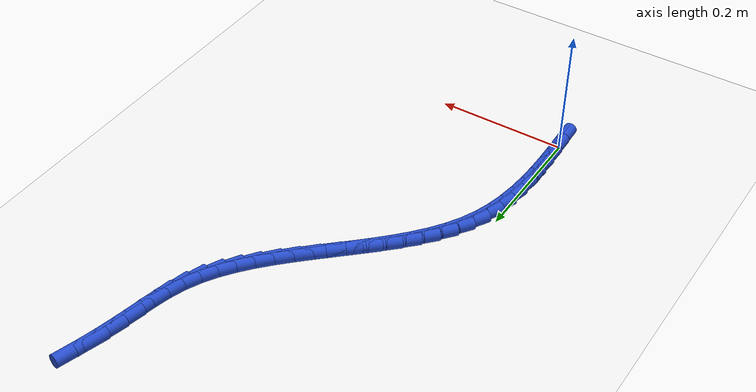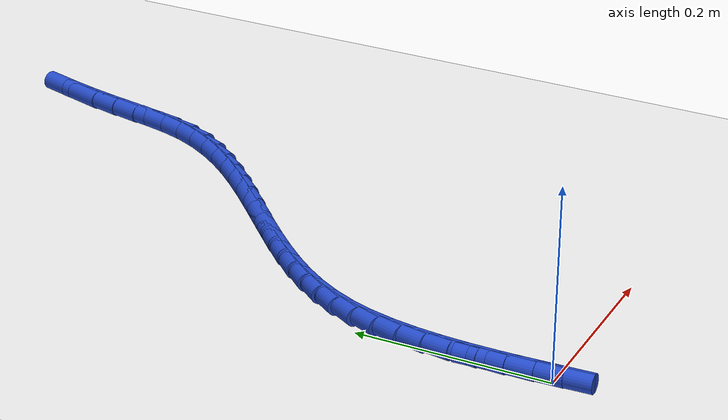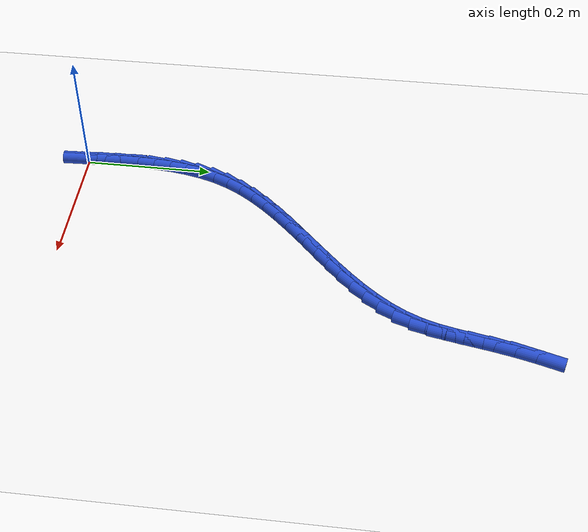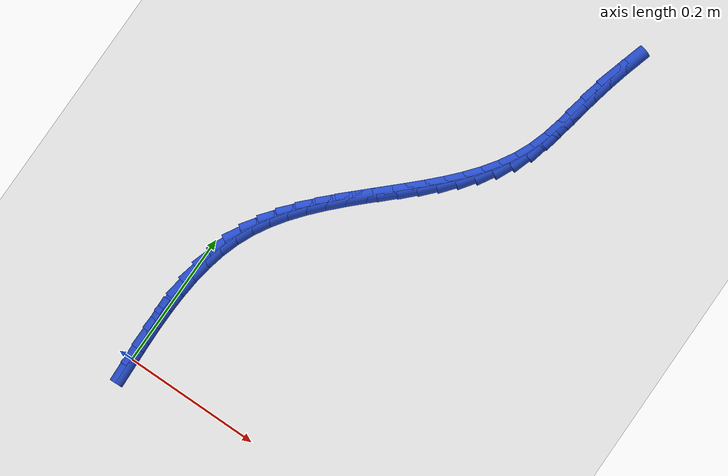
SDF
<sdf version="1.6">
 <world name="default">
  <model name="ground_plane">
   <static>1</static>
   <link name="link">
    <collision name="collision">
     <geometry><plane><normal>0 0 1</normal><size>100 100</size></plane></geometry>
     <surface><friction><ode><mu>100</mu><mu2>50</mu2></ode></friction></surface>
    </collision>
    <visual name="visual">
     <cast_shadows>0</cast_shadows>
     <geometry><plane><normal>0 0 1</normal><size>100 100</size></plane></geometry>
     <material>
      <script><uri>file://media/materials/scripts/gazebo.material</uri><name>Gazebo/WhiteGlow</name></script>
     </material>
    </visual>
   </link>
  </model>
  <model name="line">
   <link name="link_0">
    <pose>1.734723475976807e-18 -2.0816681711721685e-17 0.01 0 1.57 -1.532886110411397</pose>
    <collision name="collision">
     <geometry><cylinder><radius>0.01</radius><length>0.08</length></cylinder></geometry>
    </collision>
    <visual name="visual">
     <material>
      <script><name>Gazebo/Blue</name><uri>file://media/materials/scripts/gazebo.material</uri></script>
     </material>
     <geometry><cylinder><radius>0.01</radius><length>0.08</length></cylinder></geometry>
    </visual>
   </link>
   <link name="link_1">
    <pose>-0.001054489585071092 0.02780211963542385 0.01 0 1.57 -1.550534901083931</pose>
    <collision name="collision">
     <geometry><cylinder><radius>0.01</radius><length>0.08</length></cylinder></geometry>
    </collision>
    <visual name="visual">
     <material>
      <script><name>Gazebo/Blue</name><uri>file://media/materials/scripts/gazebo.material</uri></script>
     </material>
     <geometry><cylinder><radius>0.01</radius><length>0.08</length></cylinder></geometry>
    </visual>
   </link>
   <link name="link_2">
    <pose>-0.0016200203628982863 0.05570999717233436 0.01 0 1.57 1.5635487329833877</pose>
    <collision name="collision">
     <geometry><cylinder><radius>0.01</radius><length>0.08</length></cylinder></geometry>
    </collision>
    <visual name="visual">
     <material>
      <script><name>Gazebo/Blue</name><uri>file://media/materials/scripts/gazebo.material</uri></script>
     </material>
     <geometry><cylinder><radius>0.01</radius><length>0.08</length></cylinder></geometry>
    </visual>
   </link>
   <link name="link_3">
    <pose>-0.0014181952436658097 0.08355669921876518 0.01 0 1.57 1.525655338502662</pose>
    <collision name="collision">
     <geometry><cylinder><radius>0.01</radius><length>0.08</length></cylinder></geometry>
    </collision>
    <visual name="visual">
     <material>
      <script><name>Gazebo/Blue</name><uri>file://media/materials/scripts/gazebo.material</uri></script>
     </material>
     <geometry><cylinder><radius>0.01</radius><length>0.08</length></cylinder></geometry>
    </visual>
   </link>
   <link name="link_4">
    <pose>-0.00017061713755789007 0.11117529238274991 0.01 0 1.57 1.4766088035250573</pose>
    <collision name="collision">
     <geometry><cylinder><radius>0.01</radius><length>0.08</length></cylinder></geometry>
    </collision>
    <visual name="visual">
     <material>
      <script><name>Gazebo/Blue</name><uri>file://media/materials/scripts/gazebo.material</uri></script>
     </material>
     <geometry><cylinder><radius>0.01</radius><length>0.08</length></cylinder></geometry>
    </visual>
   </link>
   <link name="link_5">
    <pose>0.0024011110452412422 0.13839884327232227 0.01 0 1.57 1.4154918935702672</pose>
    <collision name="collision">
     <geometry><cylinder><radius>0.01</radius><length>0.08</length></cylinder></geometry>
    </collision>
    <visual name="visual">
     <material>
      <script><name>Gazebo/Blue</name><uri>file://media/materials/scripts/gazebo.material</uri></script>
     </material>
     <geometry><cylinder><radius>0.01</radius><length>0.08</length></cylinder></geometry>
    </visual>
   </link>
   <link name="link_6">
    <pose>0.006575386394547364 0.16506041849551586 0.01 0 1.57 1.3414084571035907</pose>
    <collision name="collision">
     <geometry><cylinder><radius>0.01</radius><length>0.08</length></cylinder></geometry>
    </collision>
    <visual name="visual">
     <material>
      <script><name>Gazebo/Blue</name><uri>file://media/materials/scripts/gazebo.material</uri></script>
     </material>
     <geometry><cylinder><radius>0.01</radius><length>0.08</length></cylinder></geometry>
    </visual>
   </link>
   <link name="link_7">
    <pose>0.01263060600017624 0.19099308466036435 0.01 0 1.57 1.2537638976980172</pose>
    <collision name="collision">
     <geometry><cylinder><radius>0.01</radius><length>0.08</length></cylinder></geometry>
    </collision>
    <visual name="visual">
     <material>
      <script><name>Gazebo/Blue</name><uri>file://media/materials/scripts/gazebo.material</uri></script>
     </material>
     <geometry><cylinder><radius>0.01</radius><length>0.08</length></cylinder></geometry>
    </visual>
   </link>
   <link name="link_8">
    <pose>0.020845166951943644 0.21602990837490138 0.01 0 1.57 1.1529521189873344</pose>
    <collision name="collision">
     <geometry><cylinder><radius>0.01</radius><length>0.08</length></cylinder></geometry>
    </collision>
    <visual name="visual">
     <material>
      <script><name>Gazebo/Blue</name><uri>file://media/materials/scripts/gazebo.material</uri></script>
     </material>
     <geometry><cylinder><radius>0.01</radius><length>0.08</length></cylinder></geometry>
    </visual>
   </link>
   <link name="link_9">
    <pose>0.031490871609810706 0.24000729775779747 0.01 0 1.57 1.0513104828891866</pose>
    <collision name="collision">
     <geometry><cylinder><radius>0.01</radius><length>0.08</length></cylinder></geometry>
    </collision>
    <visual name="visual">
     <material>
      <script><name>Gazebo/Blue</name><uri>file://media/materials/scripts/gazebo.material</uri></script>
     </material>
     <geometry><cylinder><radius>0.01</radius><length>0.08</length></cylinder></geometry>
    </visual>
   </link>
   <link name="link_10">
    <pose>0.04457908712071924 0.26289362191076504 0.01 0 1.57 0.9647965593218606</pose>
    <collision name="collision">
     <geometry><cylinder><radius>0.01</radius><length>0.08</length></cylinder></geometry>
    </collision>
    <visual name="visual">
     <material>
      <script><name>Gazebo/Blue</name><uri>file://media/materials/scripts/gazebo.material</uri></script>
     </material>
     <geometry><cylinder><radius>0.01</radius><length>0.08</length></cylinder></geometry>
    </visual>
   </link>
   <link name="link_11">
    <pose>0.05978049539242175 0.2848298731324727 0.01 0 1.57 0.8945799264818539</pose>
    <collision name="collision">
     <geometry><cylinder><radius>0.01</radius><length>0.08</length></cylinder></geometry>
    </collision>
    <visual name="visual">
     <material>
      <script><name>Gazebo/Blue</name><uri>file://media/materials/scripts/gazebo.material</uri></script>
     </material>
     <geometry><cylinder><radius>0.01</radius><length>0.08</length></cylinder></geometry>
    </visual>
   </link>
   <link name="link_12">
    <pose>0.07674276971952632 0.30596870204986837 0.01 0 1.57 0.8399753419119388</pose>
    <collision name="collision">
     <geometry><cylinder><radius>0.01</radius><length>0.08</length></cylinder></geometry>
    </collision>
    <visual name="visual">
     <material>
      <script><name>Gazebo/Blue</name><uri>file://media/materials/scripts/gazebo.material</uri></script>
     </material>
     <geometry><cylinder><radius>0.01</radius><length>0.08</length></cylinder></geometry>
    </visual>
   </link>
   <link name="link_13">
    <pose>0.09511358339664111 0.32646275928990004 0.01 0 1.57 0.7999780329652985</pose>
    <collision name="collision">
     <geometry><cylinder><radius>0.01</radius><length>0.08</length></cylinder></geometry>
    </collision>
    <visual name="visual">
     <material>
      <script><name>Gazebo/Blue</name><uri>file://media/materials/scripts/gazebo.material</uri></script>
     </material>
     <geometry><cylinder><radius>0.01</radius><length>0.08</length></cylinder></geometry>
    </visual>
   </link>
   <link name="link_14">
    <pose>0.1145406097183744 0.34646469547951625 0.01 0 1.57 0.7736267360686331</pose>
    <collision name="collision">
     <geometry><cylinder><radius>0.01</radius><length>0.08</length></cylinder></geometry>
    </collision>
    <visual name="visual">
     <material>
      <script><name>Gazebo/Blue</name><uri>file://media/materials/scripts/gazebo.material</uri></script>
     </material>
     <geometry><cylinder><radius>0.01</radius><length>0.08</length></cylinder></geometry>
    </visual>
   </link>
   <link name="link_15">
    <pose>0.13467152197933413 0.36612716124566463 0.01 0 1.57 0.760206472804146</pose>
    <collision name="collision">
     <geometry><cylinder><radius>0.01</radius><length>0.08</length></cylinder></geometry>
    </collision>
    <visual name="visual">
     <material>
      <script><name>Gazebo/Blue</name><uri>file://media/materials/scripts/gazebo.material</uri></script>
     </material>
     <geometry><cylinder><radius>0.01</radius><length>0.08</length></cylinder></geometry>
    </visual>
   </link>
   <link name="link_16">
    <pose>0.15515399347412867 0.3856028072152936 0.01 0 1.57 0.7593483373574004</pose>
    <collision name="collision">
     <geometry><cylinder><radius>0.01</radius><length>0.08</length></cylinder></geometry>
    </collision>
    <visual name="visual">
     <material>
      <script><name>Gazebo/Blue</name><uri>file://media/materials/scripts/gazebo.material</uri></script>
     </material>
     <geometry><cylinder><radius>0.01</radius><length>0.08</length></cylinder></geometry>
    </visual>
   </link>
   <link name="link_17">
    <pose>0.17563569749736607 0.40504428401535125 0.01 0 1.57 0.771071300309756</pose>
    <collision name="collision">
     <geometry><cylinder><radius>0.01</radius><length>0.08</length></cylinder></geometry>
    </collision>
    <visual name="visual">
     <material>
      <script><name>Gazebo/Blue</name><uri>file://media/materials/scripts/gazebo.material</uri></script>
     </material>
     <geometry><cylinder><radius>0.01</radius><length>0.08</length></cylinder></geometry>
    </visual>
   </link>
   <link name="link_18">
    <pose>0.19576430734365435 0.42460424227278526 0.01 0 1.57 0.7957890482763234</pose>
    <collision name="collision">
     <geometry><cylinder><radius>0.01</radius><length>0.08</length></cylinder></geometry>
    </collision>
    <visual name="visual">
     <material>
      <script><name>Gazebo/Blue</name><uri>file://media/materials/scripts/gazebo.material</uri></script>
     </material>
     <geometry><cylinder><radius>0.01</radius><length>0.08</length></cylinder></geometry>
    </visual>
   </link>
   <link name="link_19">
    <pose>0.21518749630760192 0.4444353326145443 0.01 0 1.57 0.8342824467986034</pose>
    <collision name="collision">
     <geometry><cylinder><radius>0.01</radius><length>0.08</length></cylinder></geometry>
    </collision>
    <visual name="visual">
     <material>
      <script><name>Gazebo/Blue</name><uri>file://media/materials/scripts/gazebo.material</uri></script>
     </material>
     <geometry><cylinder><radius>0.01</radius><length>0.08</length></cylinder></geometry>
    </visual>
   </link>
   <link name="link_20">
    <pose>0.23355293768381674 0.4646902056675761 0.01 0 1.57 0.8876149132541281</pose>
    <collision name="collision">
     <geometry><cylinder><radius>0.01</radius><length>0.08</length></cylinder></geometry>
    </collision>
    <visual name="visual">
     <material>
      <script><name>Gazebo/Blue</name><uri>file://media/materials/scripts/gazebo.material</uri></script>
     </material>
     <geometry><cylinder><radius>0.01</radius><length>0.08</length></cylinder></geometry>
    </visual>
   </link>
   <link name="link_21">
    <pose>0.2505083047669071 0.485521512058829 0.01 0 1.57 0.9569428256014516</pose>
    <collision name="collision">
     <geometry><cylinder><radius>0.01</radius><length>0.08</length></cylinder></geometry>
    </collision>
    <visual name="visual">
     <material>
      <script><name>Gazebo/Blue</name><uri>file://media/materials/scripts/gazebo.material</uri></script>
     </material>
     <geometry><cylinder><radius>0.01</radius><length>0.08</length></cylinder></geometry>
    </visual>
   </link>
   <link name="link_22">
    <pose>0.2657012708514811 0.5070819024152509 0.01 0 1.57 1.0431542261373234</pose>
    <collision name="collision">
     <geometry><cylinder><radius>0.01</radius><length>0.08</length></cylinder></geometry>
    </collision>
    <visual name="visual">
     <material>
      <script><name>Gazebo/Blue</name><uri>file://media/materials/scripts/gazebo.material</uri></script>
     </material>
     <geometry><cylinder><radius>0.01</radius><length>0.08</length></cylinder></geometry>
    </visual>
   </link>
   <link name="link_23">
    <pose>0.2787795092321467 0.5295240273637899 0.01 0 1.57 1.1462874696964127</pose>
    <collision name="collision">
     <geometry><cylinder><radius>0.01</radius><length>0.08</length></cylinder></geometry>
    </collision>
    <visual name="visual">
     <material>
      <script><name>Gazebo/Blue</name><uri>file://media/materials/scripts/gazebo.material</uri></script>
     </material>
     <geometry><cylinder><radius>0.01</radius><length>0.08</length></cylinder></geometry>
    </visual>
   </link>
   <link name="link_24">
    <pose>0.28939069320351246 0.5530005375313943 0.01 0 1.57 1.2573030293908356</pose>
    <collision name="collision">
     <geometry><cylinder><radius>0.01</radius><length>0.08</length></cylinder></geometry>
    </collision>
    <visual name="visual">
     <material>
      <script><name>Gazebo/Blue</name><uri>file://media/materials/scripts/gazebo.material</uri></script>
     </material>
     <geometry><cylinder><radius>0.01</radius><length>0.08</length></cylinder></geometry>
    </visual>
   </link>
   <link name="link_25">
    <pose>0.2973763518225376 0.5776336748269737 0.01 0 1.57 1.3383966498846531</pose>
    <collision name="collision">
     <geometry><cylinder><radius>0.01</radius><length>0.08</length></cylinder></geometry>
    </collision>
    <visual name="visual">
     <material>
      <script><name>Gazebo/Blue</name><uri>file://media/materials/scripts/gazebo.material</uri></script>
     </material>
     <geometry><cylinder><radius>0.01</radius><length>0.08</length></cylinder></geometry>
    </visual>
   </link>
   <link name="link_26">
    <pose>0.3034757726418987 0.6034048564316531 0.01 0 1.57 1.3790585587075286</pose>
    <collision name="collision">
     <geometry><cylinder><radius>0.01</radius><length>0.08</length></cylinder></geometry>
    </collision>
    <visual name="visual">
     <material>
      <script><name>Gazebo/Blue</name><uri>file://media/materials/scripts/gazebo.material</uri></script>
     </material>
     <geometry><cylinder><radius>0.01</radius><length>0.08</length></cylinder></geometry>
    </visual>
   </link>
   <link name="link_27">
    <pose>0.30868794308638425 0.6302547623305625 0.01 0 1.57 1.3820387423248808</pose>
    <collision name="collision">
     <geometry><cylinder><radius>0.01</radius><length>0.08</length></cylinder></geometry>
    </collision>
    <visual name="visual">
     <material>
      <script><name>Gazebo/Blue</name><uri>file://media/materials/scripts/gazebo.material</uri></script>
     </material>
     <geometry><cylinder><radius>0.01</radius><length>0.08</length></cylinder></geometry>
    </visual>
   </link>
   <link name="link_28">
    <pose>0.31401186530222835 0.6581240641139906 0.01 0 1.57 1.3565869018099266</pose>
    <collision name="collision">
     <geometry><cylinder><radius>0.01</radius><length>0.08</length></cylinder></geometry>
    </collision>
    <visual name="visual">
     <material>
      <script><name>Gazebo/Blue</name><uri>file://media/materials/scripts/gazebo.material</uri></script>
     </material>
     <geometry><cylinder><radius>0.01</radius><length>0.08</length></cylinder></geometry>
    </visual>
   </link>
   <link name="link_29">
    <pose>0.3202690441799271 0.6868864767038024 0.01 0 1.57 1.3238237011585037</pose>
    <collision name="collision">
     <geometry><cylinder><radius>0.01</radius><length>0.08</length></cylinder></geometry>
    </collision>
    <visual name="visual">
     <material>
      <script><name>Gazebo/Blue</name><uri>file://media/materials/scripts/gazebo.material</uri></script>
     </material>
     <geometry><cylinder><radius>0.01</radius><length>0.08</length></cylinder></geometry>
    </visual>
   </link>
   <link name="link_30">
    <pose>0.32765434823906264 0.7161793311773075 0.01 0 1.57 1.287233978818466</pose>
    <collision name="collision">
     <geometry><cylinder><radius>0.01</radius><length>0.08</length></cylinder></geometry>
    </collision>
    <visual name="visual">
     <material>
      <script><name>Gazebo/Blue</name><uri>file://media/materials/scripts/gazebo.material</uri></script>
     </material>
     <geometry><cylinder><radius>0.01</radius><length>0.08</length></cylinder></geometry>
    </visual>
   </link>
   <link name="link_270">
    <pose>1.3769367590565906e-17 -2.498001805406602e-16 0.01 0 1.57 -1.5307696029693987</pose>
    <collision name="collision">
     <geometry><cylinder><radius>0.01</radius><length>0.08</length></cylinder></geometry>
    </collision>
    <visual name="visual">
     <material>
      <script><name>Gazebo/Blue</name><uri>file://media/materials/scripts/gazebo.material</uri></script>
     </material>
     <geometry><cylinder><radius>0.01</radius><length>0.08</length></cylinder></geometry>
    </visual>
   </link>
   <link name="link_271">
    <pose>-0.0011146919125144292 0.02783381814587211 0.01 0 1.57 -1.5357252083577515</pose>
    <collision name="collision">
     <geometry><cylinder><radius>0.01</radius><length>0.08</length></cylinder></geometry>
    </collision>
    <visual name="visual">
     <material>
      <script><name>Gazebo/Blue</name><uri>file://media/materials/scripts/gazebo.material</uri></script>
     </material>
     <geometry><cylinder><radius>0.01</radius><length>0.08</length></cylinder></geometry>
    </visual>
   </link>
   <link name="link_272">
    <pose>-0.002101638982444951 0.05596358525591933 0.01 0 1.57 -1.5332602782750289</pose>
    <collision name="collision">
     <geometry><cylinder><radius>0.01</radius><length>0.08</length></cylinder></geometry>
    </collision>
    <visual name="visual">
     <material>
      <script><name>Gazebo/Blue</name><uri>file://media/materials/scripts/gazebo.material</uri></script>
     </material>
     <geometry><cylinder><radius>0.01</radius><length>0.08</length></cylinder></geometry>
    </visual>
   </link>
  </model>
 </world>
</sdf>
